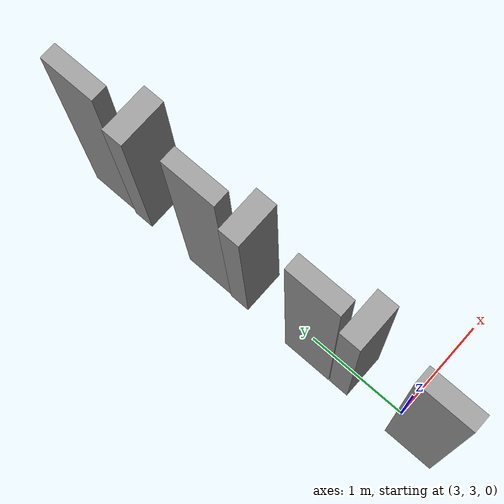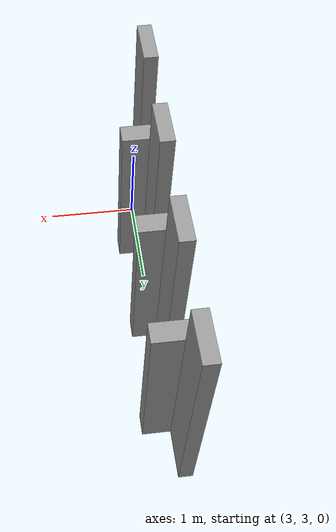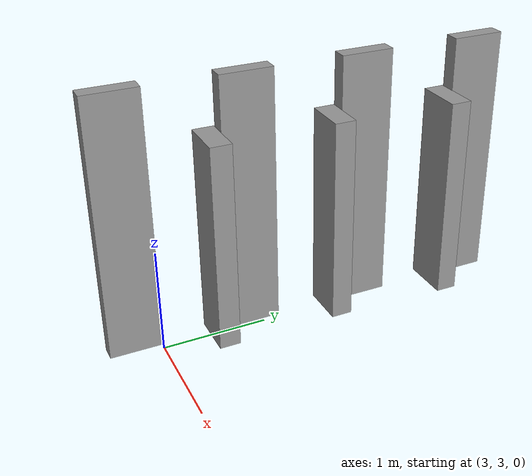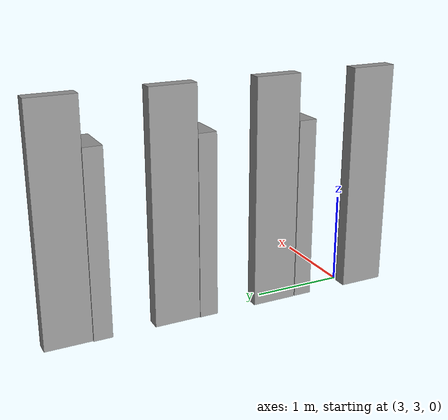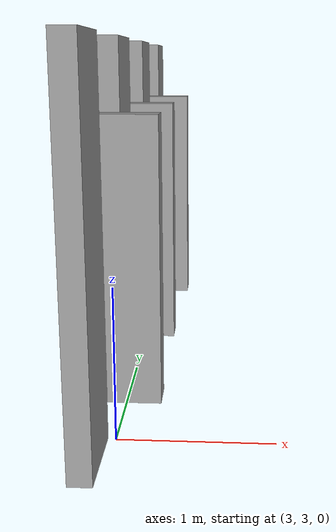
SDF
<?xml version='1.0'?>
<sdf version='1.6'>
  <model name='Room_With_small_doors'>
    <pose frame=''>2.89425 4.49082 0 0 -0 0</pose>
    <link name='Door_0'>
      <collision name='Door_0_Collision'>
        <geometry>
          <box>
            <size>0.427268 0.2 2</size>
          </box>
        </geometry>
        <pose frame=''>0 0 1 0 -0 0</pose>
      </collision>
      <visual name='Door_0_Visual'>
        <pose frame=''>0 0 1 0 -0 0</pose>
        <geometry>
          <box>
            <size>0.427268 0.2 2</size>
          </box>
        </geometry>
        <material>
          <script>
            <uri>file://media/materials/scripts/gazebo.material</uri>
            <name>Gazebo/Grey</name>
          </script>
        </material>
      </visual>
      <pose frame=''>0.130955 -0.933679 0 0 -0 0</pose>
    </link>
    <link name='Door_1'>
      <collision name='Door_1_Collision'>
        <geometry>
          <box>
            <size>0.421386 0.2 2</size>
          </box>
        </geometry>
        <pose frame=''>0 0 1 0 -0 0</pose>
      </collision>
      <visual name='Door_1_Visual'>
        <pose frame=''>0 0 1 0 -0 0</pose>
        <geometry>
          <box>
            <size>0.421386 0.2 2</size>
          </box>
        </geometry>
        <material>
          <script>
            <uri>file://media/materials/scripts/gazebo.material</uri>
            <name>Gazebo/Grey</name>
          </script>
        </material>
      </visual>
      <pose frame=''>0.134732 0.217836 0 0 -0 0</pose>
    </link>
    <link name='Door_2'>
      <collision name='Door_2_Collision'>
        <geometry>
          <box>
            <size>0.464262 0.2 2</size>
          </box>
        </geometry>
        <pose frame=''>0 0 1 0 -0 0</pose>
      </collision>
      <visual name='Door_2_Visual'>
        <pose frame=''>0 0 1 0 -0 0</pose>
        <geometry>
          <box>
            <size>0.464262 0.2 2</size>
          </box>
        </geometry>
        <material>
          <script>
            <uri>file://media/materials/scripts/gazebo.material</uri>
            <name>Gazebo/Grey</name>
          </script>
        </material>
      </visual>
      <pose frame=''>0.16617 1.37986 0 0 -0 0</pose>
    </link>
    <link name='Wall_11'>
      <collision name='Wall_11_Collision'>
        <geometry>
          <box>
            <size>0.5 0.15 2.5</size>
          </box>
        </geometry>
        <pose frame=''>0 0 1.25 0 -0 0</pose>
      </collision>
      <visual name='Wall_11_Visual'>
        <pose frame=''>0 0 1.25 0 -0 0</pose>
        <geometry>
          <box>
            <size>0.5 0.15 2.5</size>
          </box>
        </geometry>
        <material>
          <script>
            <uri>file://media/materials/scripts/gazebo.material</uri>
            <name>Gazebo/Grey</name>
          </script>
          <ambient>1 1 1 1</ambient>
        </material>
        <meta>
          <layer>0</layer>
        </meta>
      </visual>
      <pose frame=''>0.007679 0.568065 0 0 -0 1.5708</pose>
    </link>
    <link name='Wall_13'>
      <collision name='Wall_13_Collision'>
        <geometry>
          <box>
            <size>0.5 0.15 2.5</size>
          </box>
        </geometry>
        <pose frame=''>0 0 1.25 0 -0 0</pose>
      </collision>
      <visual name='Wall_13_Visual'>
        <pose frame=''>0 0 1.25 0 -0 0</pose>
        <geometry>
          <box>
            <size>0.5 0.15 2.5</size>
          </box>
        </geometry>
        <material>
          <script>
            <uri>file://media/materials/scripts/gazebo.material</uri>
            <name>Gazebo/Grey</name>
          </script>
          <ambient>1 1 1 1</ambient>
        </material>
        <meta>
          <layer>0</layer>
        </meta>
      </visual>
      <pose frame=''>-0.008896 -0.57621 0 0 -0 1.5708</pose>
    </link>
    <link name='Wall_15'>
      <collision name='Wall_15_Collision'>
        <geometry>
          <box>
            <size>0.5 0.15 2.5</size>
          </box>
        </geometry>
        <pose frame=''>0 0 1.25 0 -0 0</pose>
      </collision>
      <visual name='Wall_15_Visual'>
        <pose frame=''>0 0 1.25 0 -0 0</pose>
        <geometry>
          <box>
            <size>0.5 0.15 2.5</size>
          </box>
        </geometry>
        <material>
          <script>
            <uri>file://media/materials/scripts/gazebo.material</uri>
            <name>Gazebo/Grey</name>
          </script>
          <ambient>1 1 1 1</ambient>
        </material>
        <meta>
          <layer>0</layer>
        </meta>
      </visual>
      <pose frame=''>0.024255 1.72582 0 0 -0 1.5708</pose>
    </link>
    <link name='Wall_7'>
      <collision name='Wall_7_Collision'>
        <geometry>
          <box>
            <size>0.5 0.15 2.5</size>
          </box>
        </geometry>
        <pose frame=''>0 0 1.25 0 -0 0</pose>
      </collision>
      <visual name='Wall_7_Visual'>
        <pose frame=''>0 0 1.25 0 -0 0</pose>
        <geometry>
          <box>
            <size>0.5 0.15 2.5</size>
          </box>
        </geometry>
        <material>
          <script>
            <uri>file://media/materials/scripts/gazebo.material</uri>
            <name>Gazebo/Grey</name>
          </script>
          <ambient>1 1 1 1</ambient>
        </material>
        <meta>
          <layer>0</layer>
        </meta>
      </visual>
      <pose frame=''>-0.024255 -1.72582 0 0 -0 -1.5708</pose>
    </link>
    <static>1</static>
  </model>
</sdf>
